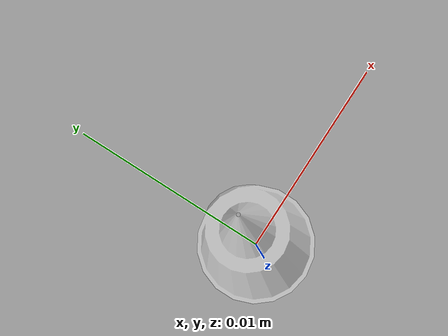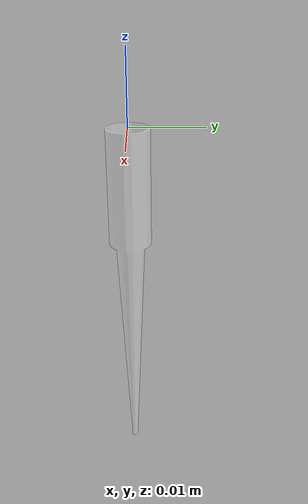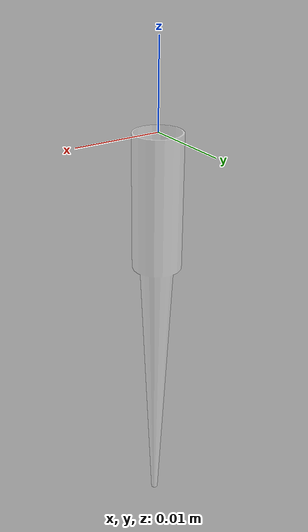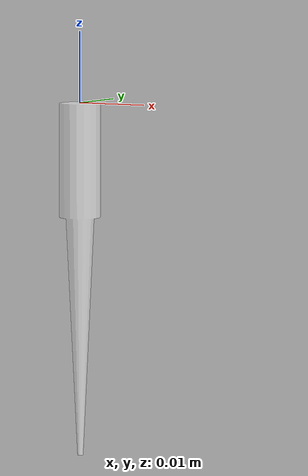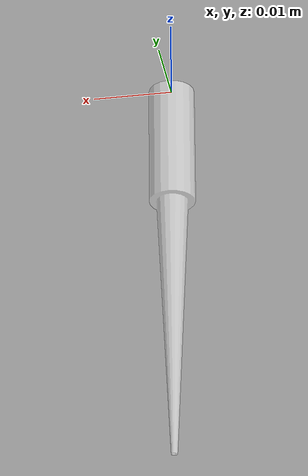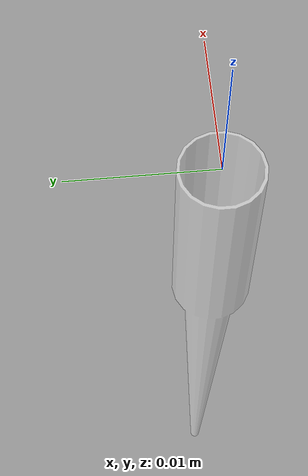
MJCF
<mujoco model="pipette_tip">
  <compiler angle="radian" meshdir="../../assets/"/>

  <asset>
    <mesh name="pipette_tip-visual_visual" file="container/tip_200ul_vis/visual.obj" scale="0.001 0.001 0.001"/>
    <mesh name="pipette_tip-collision_tip_collision_0" file="container/tip_200ul_col/tip_collision_0.obj" scale="0.001 0.001 0.001"/>
  </asset>

  <worldbody>
    <body name="pipette_tip">
      <geom type="mesh" contype="0" conaffinity="0" group="2" mesh="pipette_tip-visual_visual" rgba="1 1 1 0.5"/>
      <geom type="mesh" group="3" mesh="pipette_tip-collision_tip_collision_0"/>
      <geom size="0.00287797 0.008" pos="0 0 -0.008" type="cylinder" conaffinity="3" group="3"/>
    </body>
  </worldbody>
</mujoco>
